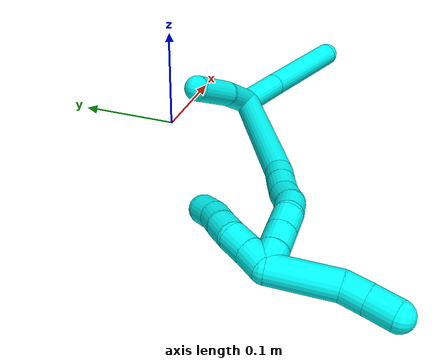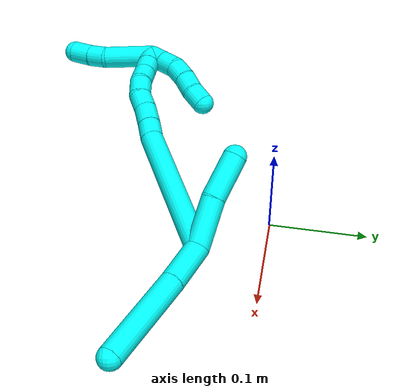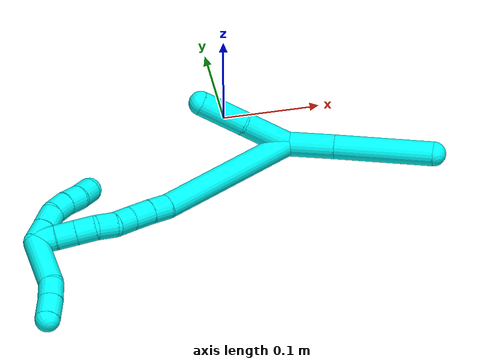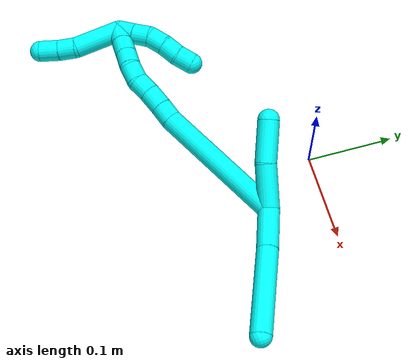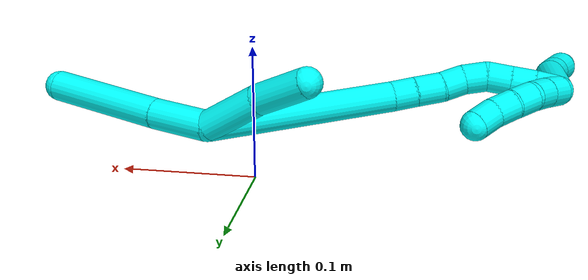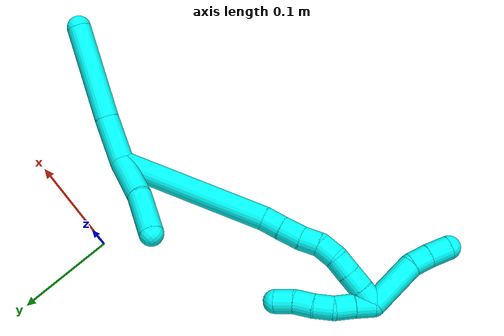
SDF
<sdf version="1.7">
 <world name="default">
  <model name="3">
   <static>0</static>
   <link name="3">
    <collision name="collision-cylinder-e_1_2_8">
     <pose>0.019988 0.009242 0.011061 -0.696038 0.946016 -0.367135</pose>
     <geometry><cylinder><radius>0.0125</radius><length>0.049286</length></cylinder></geometry>
     <surface>
      <friction><ode><mu>1.16</mu><mu2>1.16</mu2><slip1>0</slip1><slip2>0</slip2></ode></friction>
      <contact><ode><kp>1e+06</kp><kd>1</kd><max_vel>0</max_vel><min_depth>0.001</min_depth></ode></contact>
     </surface>
    </collision>
    <visual name="visual-cylinder-e_1_2_8">
     <pose>0.019988 0.009242 0.011061 -0.696038 0.946016 -0.367135</pose>
     <geometry><cylinder><radius>0.0125</radius><length>0.049286</length></cylinder></geometry>
     <material><ambient>0.003922 1 0.996078 1</ambient></material>
    </visual>
    <collision name="collision-cylinder-e_2_8_6">
     <pose>0.079408 0.038254 0.046413 -0.683154 0.899581 -0.339967</pose>
     <geometry><cylinder><radius>0.0125</radius><length>0.100714</length></cylinder></geometry>
     <surface>
      <friction><ode><mu>1.16</mu><mu2>1.16</mu2><slip1>0</slip1><slip2>0</slip2></ode></friction>
      <contact><ode><kp>1e+06</kp><kd>1</kd><max_vel>0</max_vel><min_depth>0.001</min_depth></ode></contact>
     </surface>
    </collision>
    <visual name="visual-cylinder-e_2_8_6">
     <pose>0.079408 0.038254 0.046413 -0.683154 0.899581 -0.339967</pose>
     <geometry><cylinder><radius>0.0125</radius><length>0.100714</length></cylinder></geometry>
     <material><ambient>0.003922 1 0.996078 1</ambient></material>
    </visual>
    <collision name="collision-cylinder-e_1_2_9">
     <pose>-0.023924 0.005223 -0.008307 -2.58034 -1.18156 2.32981</pose>
     <geometry><cylinder><radius>0.0125</radius><length>0.051716</length></cylinder></geometry>
     <surface>
      <friction><ode><mu>1.16</mu><mu2>1.16</mu2><slip1>0</slip1><slip2>0</slip2></ode></friction>
      <contact><ode><kp>1e+06</kp><kd>1</kd><max_vel>0</max_vel><min_depth>0.001</min_depth></ode></contact>
     </surface>
    </collision>
    <visual name="visual-cylinder-e_1_2_9">
     <pose>-0.023924 0.005223 -0.008307 -2.58034 -1.18156 2.32981</pose>
     <geometry><cylinder><radius>0.0125</radius><length>0.051716</length></cylinder></geometry>
     <material><ambient>0.003922 1 0.996078 1</ambient></material>
    </visual>
    <collision name="collision-cylinder-e_2_9_5">
     <pose>-0.069159 0.012924 -0.027684 -2.92128 -1.08167 2.77734</pose>
     <geometry><cylinder><radius>0.0125</radius><length>0.048284</length></cylinder></geometry>
     <surface>
      <friction><ode><mu>1.16</mu><mu2>1.16</mu2><slip1>0</slip1><slip2>0</slip2></ode></friction>
      <contact><ode><kp>1e+06</kp><kd>1</kd><max_vel>0</max_vel><min_depth>0.001</min_depth></ode></contact>
     </surface>
    </collision>
    <visual name="visual-cylinder-e_2_9_5">
     <pose>-0.069159 0.012924 -0.027684 -2.92128 -1.08167 2.77734</pose>
     <geometry><cylinder><radius>0.0125</radius><length>0.048284</length></cylinder></geometry>
     <material><ambient>0.003922 1 0.996078 1</ambient></material>
    </visual>
    <collision name="collision-cylinder-e_1_2_10">
     <pose>-0.070498 -0.01993 0.027694 0.623794 -1.12004 -0.398924</pose>
     <geometry><cylinder><radius>0.0125</radius><length>0.156641</length></cylinder></geometry>
     <surface>
      <friction><ode><mu>1.16</mu><mu2>1.16</mu2><slip1>0</slip1><slip2>0</slip2></ode></friction>
      <contact><ode><kp>1e+06</kp><kd>1</kd><max_vel>0</max_vel><min_depth>0.001</min_depth></ode></contact>
     </surface>
    </collision>
    <visual name="visual-cylinder-e_1_2_10">
     <pose>-0.070498 -0.01993 0.027694 0.623794 -1.12004 -0.398924</pose>
     <geometry><cylinder><radius>0.0125</radius><length>0.156641</length></cylinder></geometry>
     <material><ambient>0.003922 1 0.996078 1</ambient></material>
    </visual>
    <collision name="collision-cylinder-e_2_10_11">
     <pose>-0.150663 -0.041771 0.057512 0.732417 -1.28351 -0.558213</pose>
     <geometry><cylinder><radius>0.0125</radius><length>0.020162</length></cylinder></geometry>
     <surface>
      <friction><ode><mu>1.16</mu><mu2>1.16</mu2><slip1>0</slip1><slip2>0</slip2></ode></friction>
      <contact><ode><kp>1e+06</kp><kd>1</kd><max_vel>0</max_vel><min_depth>0.001</min_depth></ode></contact>
     </surface>
    </collision>
    <visual name="visual-cylinder-e_2_10_11">
     <pose>-0.150663 -0.041771 0.057512 0.732417 -1.28351 -0.558213</pose>
     <geometry><cylinder><radius>0.0125</radius><length>0.020162</length></cylinder></geometry>
     <material><ambient>0.003922 1 0.996078 1</ambient></material>
    </visual>
    <collision name="collision-cylinder-e_3_11_12">
     <pose>-0.17122 -0.046128 0.062467 0.712937 -1.23983 -0.519575</pose>
     <geometry><cylinder><radius>0.0125</radius><length>0.023027</length></cylinder></geometry>
     <surface>
      <friction><ode><mu>1.16</mu><mu2>1.16</mu2><slip1>0</slip1><slip2>0</slip2></ode></friction>
      <contact><ode><kp>1e+06</kp><kd>1</kd><max_vel>0</max_vel><min_depth>0.001</min_depth></ode></contact>
     </surface>
    </collision>
    <visual name="visual-cylinder-e_3_11_12">
     <pose>-0.17122 -0.046128 0.062467 0.712937 -1.23983 -0.519575</pose>
     <geometry><cylinder><radius>0.0125</radius><length>0.023027</length></cylinder></geometry>
     <material><ambient>0.003922 1 0.996078 1</ambient></material>
    </visual>
    <collision name="collision-cylinder-e_4_12_13">
     <pose>-0.191462 -0.049445 0.068811 0.242674 -1.20152 -0.166727</pose>
     <geometry><cylinder><radius>0.0125</radius><length>0.020059</length></cylinder></geometry>
     <surface>
      <friction><ode><mu>1.16</mu><mu2>1.16</mu2><slip1>0</slip1><slip2>0</slip2></ode></friction>
      <contact><ode><kp>1e+06</kp><kd>1</kd><max_vel>0</max_vel><min_depth>0.001</min_depth></ode></contact>
     </surface>
    </collision>
    <visual name="visual-cylinder-e_4_12_13">
     <pose>-0.191462 -0.049445 0.068811 0.242674 -1.20152 -0.166727</pose>
     <geometry><cylinder><radius>0.0125</radius><length>0.020059</length></cylinder></geometry>
     <material><ambient>0.003922 1 0.996078 1</ambient></material>
    </visual>
    <collision name="collision-cylinder-e_5_13_14">
     <pose>-0.210634 -0.052362 0.072595 1.43949 -1.36346 -1.23667</pose>
     <geometry><cylinder><radius>0.0125</radius><length>0.020067</length></cylinder></geometry>
     <surface>
      <friction><ode><mu>1.16</mu><mu2>1.16</mu2><slip1>0</slip1><slip2>0</slip2></ode></friction>
      <contact><ode><kp>1e+06</kp><kd>1</kd><max_vel>0</max_vel><min_depth>0.001</min_depth></ode></contact>
     </surface>
    </collision>
    <visual name="visual-cylinder-e_5_13_14">
     <pose>-0.210634 -0.052362 0.072595 1.43949 -1.36346 -1.23667</pose>
     <geometry><cylinder><radius>0.0125</radius><length>0.020067</length></cylinder></geometry>
     <material><ambient>0.003922 1 0.996078 1</ambient></material>
    </visual>
    <collision name="collision-cylinder-e_6_14_15">
     <pose>-0.22915 -0.059228 0.071703 1.80755 -1.05276 -1.27147</pose>
     <geometry><cylinder><radius>0.0125</radius><length>0.02002</length></cylinder></geometry>
     <surface>
      <friction><ode><mu>1.16</mu><mu2>1.16</mu2><slip1>0</slip1><slip2>0</slip2></ode></friction>
      <contact><ode><kp>1e+06</kp><kd>1</kd><max_vel>0</max_vel><min_depth>0.001</min_depth></ode></contact>
     </surface>
    </collision>
    <visual name="visual-cylinder-e_6_14_15">
     <pose>-0.22915 -0.059228 0.071703 1.80755 -1.05276 -1.27147</pose>
     <geometry><cylinder><radius>0.0125</radius><length>0.02002</length></cylinder></geometry>
     <material><ambient>0.003922 1 0.996078 1</ambient></material>
    </visual>
    <collision name="collision-cylinder-e_7_15_16">
     <pose>-0.246588 -0.068805 0.069467 1.79262 -1.06185 -1.2668</pose>
     <geometry><cylinder><radius>0.0125</radius><length>0.020022</length></cylinder></geometry>
     <surface>
      <friction><ode><mu>1.16</mu><mu2>1.16</mu2><slip1>0</slip1><slip2>0</slip2></ode></friction>
      <contact><ode><kp>1e+06</kp><kd>1</kd><max_vel>0</max_vel><min_depth>0.001</min_depth></ode></contact>
     </surface>
    </collision>
    <visual name="visual-cylinder-e_7_15_16">
     <pose>-0.246588 -0.068805 0.069467 1.79262 -1.06185 -1.2668</pose>
     <geometry><cylinder><radius>0.0125</radius><length>0.020022</length></cylinder></geometry>
     <material><ambient>0.003922 1 0.996078 1</ambient></material>
    </visual>
    <collision name="collision-cylinder-e_8_16_1">
     <pose>-0.263822 -0.078615 0.066847 1.86789 -1.01419 -1.2884</pose>
     <geometry><cylinder><radius>0.0125</radius><length>0.020002</length></cylinder></geometry>
     <surface>
      <friction><ode><mu>1.16</mu><mu2>1.16</mu2><slip1>0</slip1><slip2>0</slip2></ode></friction>
      <contact><ode><kp>1e+06</kp><kd>1</kd><max_vel>0</max_vel><min_depth>0.001</min_depth></ode></contact>
     </surface>
    </collision>
    <visual name="visual-cylinder-e_8_16_1">
     <pose>-0.263822 -0.078615 0.066847 1.86789 -1.01419 -1.2884</pose>
     <geometry><cylinder><radius>0.0125</radius><length>0.020002</length></cylinder></geometry>
     <material><ambient>0.003922 1 0.996078 1</ambient></material>
    </visual>
    <collision name="collision-cylinder-e_1_1_17">
     <pose>-0.272994 -0.083891 0.093412 0.007936 -0.024245 -9.6e-05</pose>
     <geometry><cylinder><radius>0.0125</radius><length>0.056241</length></cylinder></geometry>
     <surface>
      <friction><ode><mu>1.16</mu><mu2>1.16</mu2><slip1>0</slip1><slip2>0</slip2></ode></friction>
      <contact><ode><kp>1e+06</kp><kd>1</kd><max_vel>0</max_vel><min_depth>0.001</min_depth></ode></contact>
     </surface>
    </collision>
    <visual name="visual-cylinder-e_1_1_17">
     <pose>-0.272994 -0.083891 0.093412 0.007936 -0.024245 -9.6e-05</pose>
     <geometry><cylinder><radius>0.0125</radius><length>0.056241</length></cylinder></geometry>
     <material><ambient>0.003922 1 0.996078 1</ambient></material>
    </visual>
    <collision name="collision-cylinder-e_2_17_18">
     <pose>-0.276544 -0.085996 0.131146 0.193171 -0.284533 -0.027753</pose>
     <geometry><cylinder><radius>0.0125</radius><length>0.020432</length></cylinder></geometry>
     <surface>
      <friction><ode><mu>1.16</mu><mu2>1.16</mu2><slip1>0</slip1><slip2>0</slip2></ode></friction>
      <contact><ode><kp>1e+06</kp><kd>1</kd><max_vel>0</max_vel><min_depth>0.001</min_depth></ode></contact>
     </surface>
    </collision>
    <visual name="visual-cylinder-e_2_17_18">
     <pose>-0.276544 -0.085996 0.131146 0.193171 -0.284533 -0.027753</pose>
     <geometry><cylinder><radius>0.0125</radius><length>0.020432</length></cylinder></geometry>
     <material><ambient>0.003922 1 0.996078 1</ambient></material>
    </visual>
    <collision name="collision-cylinder-e_3_18_4">
     <pose>-0.283774 -0.089774 0.151419 0.176145 -0.383322 -0.034265</pose>
     <geometry><cylinder><radius>0.0125</radius><length>0.023327</length></cylinder></geometry>
     <surface>
      <friction><ode><mu>1.16</mu><mu2>1.16</mu2><slip1>0</slip1><slip2>0</slip2></ode></friction>
      <contact><ode><kp>1e+06</kp><kd>1</kd><max_vel>0</max_vel><min_depth>0.001</min_depth></ode></contact>
     </surface>
    </collision>
    <visual name="visual-cylinder-e_3_18_4">
     <pose>-0.283774 -0.089774 0.151419 0.176145 -0.383322 -0.034265</pose>
     <geometry><cylinder><radius>0.0125</radius><length>0.023327</length></cylinder></geometry>
     <material><ambient>0.003922 1 0.996078 1</ambient></material>
    </visual>
    <collision name="collision-cylinder-e_1_1_19">
     <pose>-0.266277 -0.080614 0.057935 -2.74858 0.647951 -2.07133</pose>
     <geometry><cylinder><radius>0.0125</radius><length>0.02</length></cylinder></geometry>
     <surface>
      <friction><ode><mu>1.16</mu><mu2>1.16</mu2><slip1>0</slip1><slip2>0</slip2></ode></friction>
      <contact><ode><kp>1e+06</kp><kd>1</kd><max_vel>0</max_vel><min_depth>0.001</min_depth></ode></contact>
     </surface>
    </collision>
    <visual name="visual-cylinder-e_1_1_19">
     <pose>-0.266277 -0.080614 0.057935 -2.74858 0.647951 -2.07133</pose>
     <geometry><cylinder><radius>0.0125</radius><length>0.02</length></cylinder></geometry>
     <material><ambient>0.003922 1 0.996078 1</ambient></material>
    </visual>
    <collision name="collision-cylinder-e_2_19_20">
     <pose>-0.254362 -0.074961 0.042911 -2.81437 0.628576 -2.20175</pose>
     <geometry><cylinder><radius>0.0125</radius><length>0.02</length></cylinder></geometry>
     <surface>
      <friction><ode><mu>1.16</mu><mu2>1.16</mu2><slip1>0</slip1><slip2>0</slip2></ode></friction>
      <contact><ode><kp>1e+06</kp><kd>1</kd><max_vel>0</max_vel><min_depth>0.001</min_depth></ode></contact>
     </surface>
    </collision>
    <visual name="visual-cylinder-e_2_19_20">
     <pose>-0.254362 -0.074961 0.042911 -2.81437 0.628576 -2.20175</pose>
     <geometry><cylinder><radius>0.0125</radius><length>0.02</length></cylinder></geometry>
     <material><ambient>0.003922 1 0.996078 1</ambient></material>
    </visual>
    <collision name="collision-cylinder-e_3_20_21">
     <pose>-0.240343 -0.071249 0.029547 -2.9491 0.950729 -2.77077</pose>
     <geometry><cylinder><radius>0.0125</radius><length>0.02</length></cylinder></geometry>
     <surface>
      <friction><ode><mu>1.16</mu><mu2>1.16</mu2><slip1>0</slip1><slip2>0</slip2></ode></friction>
      <contact><ode><kp>1e+06</kp><kd>1</kd><max_vel>0</max_vel><min_depth>0.001</min_depth></ode></contact>
     </surface>
    </collision>
    <visual name="visual-cylinder-e_3_20_21">
     <pose>-0.240343 -0.071249 0.029547 -2.9491 0.950729 -2.77077</pose>
     <geometry><cylinder><radius>0.0125</radius><length>0.02</length></cylinder></geometry>
     <material><ambient>0.003922 1 0.996078 1</ambient></material>
    </visual>
    <collision name="collision-cylinder-e_4_21_22">
     <pose>-0.223322 -0.069718 0.01927 -3.05018 1.09358 -2.99159</pose>
     <geometry><cylinder><radius>0.0125</radius><length>0.02</length></cylinder></geometry>
     <surface>
      <friction><ode><mu>1.16</mu><mu2>1.16</mu2><slip1>0</slip1><slip2>0</slip2></ode></friction>
      <contact><ode><kp>1e+06</kp><kd>1</kd><max_vel>0</max_vel><min_depth>0.001</min_depth></ode></contact>
     </surface>
    </collision>
    <visual name="visual-cylinder-e_4_21_22">
     <pose>-0.223322 -0.069718 0.01927 -3.05018 1.09358 -2.99159</pose>
     <geometry><cylinder><radius>0.0125</radius><length>0.02</length></cylinder></geometry>
     <material><ambient>0.003922 1 0.996078 1</ambient></material>
    </visual>
    <collision name="collision-cylinder-e_5_22_3">
     <pose>-0.206499 -0.069804 0.008639 3.05833 0.91751 2.97332</pose>
     <geometry><cylinder><radius>0.0125</radius><length>0.02</length></cylinder></geometry>
     <surface>
      <friction><ode><mu>1.16</mu><mu2>1.16</mu2><slip1>0</slip1><slip2>0</slip2></ode></friction>
      <contact><ode><kp>1e+06</kp><kd>1</kd><max_vel>0</max_vel><min_depth>0.001</min_depth></ode></contact>
     </surface>
    </collision>
    <visual name="visual-cylinder-e_5_22_3">
     <pose>-0.206499 -0.069804 0.008639 3.05833 0.91751 2.97332</pose>
     <geometry><cylinder><radius>0.0125</radius><length>0.02</length></cylinder></geometry>
     <material><ambient>0.003922 1 0.996078 1</ambient></material>
    </visual>
    <collision name="collision-sphere-3">
     <pose>-0.198558 -0.07031 0.002582 0 -0 0</pose>
     <geometry><sphere><radius>0.0125</radius></sphere></geometry>
     <surface>
      <friction><ode><mu>1.16</mu><mu2>1.16</mu2><slip1>0</slip1><slip2>0</slip2></ode></friction>
      <contact><ode><kp>1e+06</kp><kd>1</kd><max_vel>0</max_vel><min_depth>0.001</min_depth></ode></contact>
     </surface>
    </collision>
    <visual name="visual-sphere-3">
     <pose>-0.198558 -0.07031 0.002582 0 -0 0</pose>
     <geometry><sphere><radius>0.0125</radius></sphere></geometry>
     <material><ambient>0.003922 1 0.996078 1</ambient></material>
    </visual>
    <collision name="collision-sphere-22">
     <pose>-0.214439 -0.069299 0.014696 0 -0 0</pose>
     <geometry><sphere><radius>0.0125</radius></sphere></geometry>
     <surface>
      <friction><ode><mu>1.16</mu><mu2>1.16</mu2><slip1>0</slip1><slip2>0</slip2></ode></friction>
      <contact><ode><kp>1e+06</kp><kd>1</kd><max_vel>0</max_vel><min_depth>0.001</min_depth></ode></contact>
     </surface>
    </collision>
    <visual name="visual-sphere-22">
     <pose>-0.214439 -0.069299 0.014696 0 -0 0</pose>
     <geometry><sphere><radius>0.0125</radius></sphere></geometry>
     <material><ambient>0.003922 1 0.996078 1</ambient></material>
    </visual>
    <collision name="collision-sphere-21">
     <pose>-0.232205 -0.070137 0.023844 0 -0 0</pose>
     <geometry><sphere><radius>0.0125</radius></sphere></geometry>
     <surface>
      <friction><ode><mu>1.16</mu><mu2>1.16</mu2><slip1>0</slip1><slip2>0</slip2></ode></friction>
      <contact><ode><kp>1e+06</kp><kd>1</kd><max_vel>0</max_vel><min_depth>0.001</min_depth></ode></contact>
     </surface>
    </collision>
    <visual name="visual-sphere-21">
     <pose>-0.232205 -0.070137 0.023844 0 -0 0</pose>
     <geometry><sphere><radius>0.0125</radius></sphere></geometry>
     <material><ambient>0.003922 1 0.996078 1</ambient></material>
    </visual>
    <collision name="collision-sphere-20">
     <pose>-0.248482 -0.072361 0.035251 0 -0 0</pose>
     <geometry><sphere><radius>0.0125</radius></sphere></geometry>
     <surface>
      <friction><ode><mu>1.16</mu><mu2>1.16</mu2><slip1>0</slip1><slip2>0</slip2></ode></friction>
      <contact><ode><kp>1e+06</kp><kd>1</kd><max_vel>0</max_vel><min_depth>0.001</min_depth></ode></contact>
     </surface>
    </collision>
    <visual name="visual-sphere-20">
     <pose>-0.248482 -0.072361 0.035251 0 -0 0</pose>
     <geometry><sphere><radius>0.0125</radius></sphere></geometry>
     <material><ambient>0.003922 1 0.996078 1</ambient></material>
    </visual>
    <collision name="collision-sphere-19">
     <pose>-0.260242 -0.07756 0.05057 0 -0 0</pose>
     <geometry><sphere><radius>0.0125</radius></sphere></geometry>
     <surface>
      <friction><ode><mu>1.16</mu><mu2>1.16</mu2><slip1>0</slip1><slip2>0</slip2></ode></friction>
      <contact><ode><kp>1e+06</kp><kd>1</kd><max_vel>0</max_vel><min_depth>0.001</min_depth></ode></contact>
     </surface>
    </collision>
    <visual name="visual-sphere-19">
     <pose>-0.260242 -0.07756 0.05057 0 -0 0</pose>
     <geometry><sphere><radius>0.0125</radius></sphere></geometry>
     <material><ambient>0.003922 1 0.996078 1</ambient></material>
    </visual>
    <collision name="collision-sphere-10">
     <pose>-0.140996 -0.039861 0.055389 0 -0 0</pose>
     <geometry><sphere><radius>0.0125</radius></sphere></geometry>
     <surface>
      <friction><ode><mu>1.16</mu><mu2>1.16</mu2><slip1>0</slip1><slip2>0</slip2></ode></friction>
      <contact><ode><kp>1e+06</kp><kd>1</kd><max_vel>0</max_vel><min_depth>0.001</min_depth></ode></contact>
     </surface>
    </collision>
    <visual name="visual-sphere-10">
     <pose>-0.140996 -0.039861 0.055389 0 -0 0</pose>
     <geometry><sphere><radius>0.0125</radius></sphere></geometry>
     <material><ambient>0.003922 1 0.996078 1</ambient></material>
    </visual>
    <collision name="collision-sphere-5">
     <pose>-0.09047 0.015403 -0.038753 0 -0 0</pose>
     <geometry><sphere><radius>0.0125</radius></sphere></geometry>
     <surface>
      <friction><ode><mu>1.16</mu><mu2>1.16</mu2><slip1>0</slip1><slip2>0</slip2></ode></friction>
      <contact><ode><kp>1e+06</kp><kd>1</kd><max_vel>0</max_vel><min_depth>0.001</min_depth></ode></contact>
     </surface>
    </collision>
    <visual name="visual-sphere-5">
     <pose>-0.09047 0.015403 -0.038753 0 -0 0</pose>
     <geometry><sphere><radius>0.0125</radius></sphere></geometry>
     <material><ambient>0.003922 1 0.996078 1</ambient></material>
    </visual>
    <collision name="collision-sphere-6">
     <pose>0.118841 0.058024 0.070704 0 -0 0</pose>
     <geometry><sphere><radius>0.0125</radius></sphere></geometry>
     <surface>
      <friction><ode><mu>1.16</mu><mu2>1.16</mu2><slip1>0</slip1><slip2>0</slip2></ode></friction>
      <contact><ode><kp>1e+06</kp><kd>1</kd><max_vel>0</max_vel><min_depth>0.001</min_depth></ode></contact>
     </surface>
    </collision>
    <visual name="visual-sphere-6">
     <pose>0.118841 0.058024 0.070704 0 -0 0</pose>
     <geometry><sphere><radius>0.0125</radius></sphere></geometry>
     <material><ambient>0.003922 1 0.996078 1</ambient></material>
    </visual>
    <collision name="collision-sphere-9">
     <pose>-0.047847 0.010445 -0.016615 0 -0 0</pose>
     <geometry><sphere><radius>0.0125</radius></sphere></geometry>
     <surface>
      <friction><ode><mu>1.16</mu><mu2>1.16</mu2><slip1>0</slip1><slip2>0</slip2></ode></friction>
      <contact><ode><kp>1e+06</kp><kd>1</kd><max_vel>0</max_vel><min_depth>0.001</min_depth></ode></contact>
     </surface>
    </collision>
    <visual name="visual-sphere-9">
     <pose>-0.047847 0.010445 -0.016615 0 -0 0</pose>
     <geometry><sphere><radius>0.0125</radius></sphere></geometry>
     <material><ambient>0.003922 1 0.996078 1</ambient></material>
    </visual>
    <collision name="collision-sphere-2">
     <geometry><sphere><radius>0.0125</radius></sphere></geometry>
     <surface>
      <friction><ode><mu>1.16</mu><mu2>1.16</mu2><slip1>0</slip1><slip2>0</slip2></ode></friction>
      <contact><ode><kp>1e+06</kp><kd>1</kd><max_vel>0</max_vel><min_depth>0.001</min_depth></ode></contact>
     </surface>
    </collision>
    <visual name="visual-sphere-2">
     <geometry><sphere><radius>0.0125</radius></sphere></geometry>
     <material><ambient>0.003922 1 0.996078 1</ambient></material>
    </visual>
    <collision name="collision-sphere-8">
     <pose>0.039975 0.018484 0.022122 0 -0 0</pose>
     <geometry><sphere><radius>0.0125</radius></sphere></geometry>
     <surface>
      <friction><ode><mu>1.16</mu><mu2>1.16</mu2><slip1>0</slip1><slip2>0</slip2></ode></friction>
      <contact><ode><kp>1e+06</kp><kd>1</kd><max_vel>0</max_vel><min_depth>0.001</min_depth></ode></contact>
     </surface>
    </collision>
    <visual name="visual-sphere-8">
     <pose>0.039975 0.018484 0.022122 0 -0 0</pose>
     <geometry><sphere><radius>0.0125</radius></sphere></geometry>
     <material><ambient>0.003922 1 0.996078 1</ambient></material>
    </visual>
    <collision name="collision-sphere-11">
     <pose>-0.160331 -0.04368 0.059636 0 -0 0</pose>
     <geometry><sphere><radius>0.0125</radius></sphere></geometry>
     <surface>
      <friction><ode><mu>1.16</mu><mu2>1.16</mu2><slip1>0</slip1><slip2>0</slip2></ode></friction>
      <contact><ode><kp>1e+06</kp><kd>1</kd><max_vel>0</max_vel><min_depth>0.001</min_depth></ode></contact>
     </surface>
    </collision>
    <visual name="visual-sphere-11">
     <pose>-0.160331 -0.04368 0.059636 0 -0 0</pose>
     <geometry><sphere><radius>0.0125</radius></sphere></geometry>
     <material><ambient>0.003922 1 0.996078 1</ambient></material>
    </visual>
    <collision name="collision-sphere-12">
     <pose>-0.182109 -0.048575 0.065297 0 -0 0</pose>
     <geometry><sphere><radius>0.0125</radius></sphere></geometry>
     <surface>
      <friction><ode><mu>1.16</mu><mu2>1.16</mu2><slip1>0</slip1><slip2>0</slip2></ode></friction>
      <contact><ode><kp>1e+06</kp><kd>1</kd><max_vel>0</max_vel><min_depth>0.001</min_depth></ode></contact>
     </surface>
    </collision>
    <visual name="visual-sphere-12">
     <pose>-0.182109 -0.048575 0.065297 0 -0 0</pose>
     <geometry><sphere><radius>0.0125</radius></sphere></geometry>
     <material><ambient>0.003922 1 0.996078 1</ambient></material>
    </visual>
    <collision name="collision-sphere-13">
     <pose>-0.200816 -0.050315 0.072325 0 -0 0</pose>
     <geometry><sphere><radius>0.0125</radius></sphere></geometry>
     <surface>
      <friction><ode><mu>1.16</mu><mu2>1.16</mu2><slip1>0</slip1><slip2>0</slip2></ode></friction>
      <contact><ode><kp>1e+06</kp><kd>1</kd><max_vel>0</max_vel><min_depth>0.001</min_depth></ode></contact>
     </surface>
    </collision>
    <visual name="visual-sphere-13">
     <pose>-0.200816 -0.050315 0.072325 0 -0 0</pose>
     <geometry><sphere><radius>0.0125</radius></sphere></geometry>
     <material><ambient>0.003922 1 0.996078 1</ambient></material>
    </visual>
    <collision name="collision-sphere-14">
     <pose>-0.220453 -0.05441 0.072866 0 -0 0</pose>
     <geometry><sphere><radius>0.0125</radius></sphere></geometry>
     <surface>
      <friction><ode><mu>1.16</mu><mu2>1.16</mu2><slip1>0</slip1><slip2>0</slip2></ode></friction>
      <contact><ode><kp>1e+06</kp><kd>1</kd><max_vel>0</max_vel><min_depth>0.001</min_depth></ode></contact>
     </surface>
    </collision>
    <visual name="visual-sphere-14">
     <pose>-0.220453 -0.05441 0.072866 0 -0 0</pose>
     <geometry><sphere><radius>0.0125</radius></sphere></geometry>
     <material><ambient>0.003922 1 0.996078 1</ambient></material>
    </visual>
    <collision name="collision-sphere-15">
     <pose>-0.237846 -0.064047 0.07054 0 -0 0</pose>
     <geometry><sphere><radius>0.0125</radius></sphere></geometry>
     <surface>
      <friction><ode><mu>1.16</mu><mu2>1.16</mu2><slip1>0</slip1><slip2>0</slip2></ode></friction>
      <contact><ode><kp>1e+06</kp><kd>1</kd><max_vel>0</max_vel><min_depth>0.001</min_depth></ode></contact>
     </surface>
    </collision>
    <visual name="visual-sphere-15">
     <pose>-0.237846 -0.064047 0.07054 0 -0 0</pose>
     <geometry><sphere><radius>0.0125</radius></sphere></geometry>
     <material><ambient>0.003922 1 0.996078 1</ambient></material>
    </visual>
    <collision name="collision-sphere-16">
     <pose>-0.25533 -0.073563 0.068394 0 -0 0</pose>
     <geometry><sphere><radius>0.0125</radius></sphere></geometry>
     <surface>
      <friction><ode><mu>1.16</mu><mu2>1.16</mu2><slip1>0</slip1><slip2>0</slip2></ode></friction>
      <contact><ode><kp>1e+06</kp><kd>1</kd><max_vel>0</max_vel><min_depth>0.001</min_depth></ode></contact>
     </surface>
    </collision>
    <visual name="visual-sphere-16">
     <pose>-0.25533 -0.073563 0.068394 0 -0 0</pose>
     <geometry><sphere><radius>0.0125</radius></sphere></geometry>
     <material><ambient>0.003922 1 0.996078 1</ambient></material>
    </visual>
    <collision name="collision-sphere-1">
     <pose>-0.272313 -0.083668 0.065301 0 -0 0</pose>
     <geometry><sphere><radius>0.0125</radius></sphere></geometry>
     <surface>
      <friction><ode><mu>1.16</mu><mu2>1.16</mu2><slip1>0</slip1><slip2>0</slip2></ode></friction>
      <contact><ode><kp>1e+06</kp><kd>1</kd><max_vel>0</max_vel><min_depth>0.001</min_depth></ode></contact>
     </surface>
    </collision>
    <visual name="visual-sphere-1">
     <pose>-0.272313 -0.083668 0.065301 0 -0 0</pose>
     <geometry><sphere><radius>0.0125</radius></sphere></geometry>
     <material><ambient>0.003922 1 0.996078 1</ambient></material>
    </visual>
    <collision name="collision-sphere-18">
     <pose>-0.279412 -0.087878 0.140769 0 -0 0</pose>
     <geometry><sphere><radius>0.0125</radius></sphere></geometry>
     <surface>
      <friction><ode><mu>1.16</mu><mu2>1.16</mu2><slip1>0</slip1><slip2>0</slip2></ode></friction>
      <contact><ode><kp>1e+06</kp><kd>1</kd><max_vel>0</max_vel><min_depth>0.001</min_depth></ode></contact>
     </surface>
    </collision>
    <visual name="visual-sphere-18">
     <pose>-0.279412 -0.087878 0.140769 0 -0 0</pose>
     <geometry><sphere><radius>0.0125</radius></sphere></geometry>
     <material><ambient>0.003922 1 0.996078 1</ambient></material>
    </visual>
    <collision name="collision-sphere-17">
     <pose>-0.273676 -0.084114 0.121523 0 -0 0</pose>
     <geometry><sphere><radius>0.0125</radius></sphere></geometry>
     <surface>
      <friction><ode><mu>1.16</mu><mu2>1.16</mu2><slip1>0</slip1><slip2>0</slip2></ode></friction>
      <contact><ode><kp>1e+06</kp><kd>1</kd><max_vel>0</max_vel><min_depth>0.001</min_depth></ode></contact>
     </surface>
    </collision>
    <visual name="visual-sphere-17">
     <pose>-0.273676 -0.084114 0.121523 0 -0 0</pose>
     <geometry><sphere><radius>0.0125</radius></sphere></geometry>
     <material><ambient>0.003922 1 0.996078 1</ambient></material>
    </visual>
    <collision name="collision-sphere-4">
     <pose>-0.288136 -0.091669 0.162068 0 -0 0</pose>
     <geometry><sphere><radius>0.0125</radius></sphere></geometry>
     <surface>
      <friction><ode><mu>1.16</mu><mu2>1.16</mu2><slip1>0</slip1><slip2>0</slip2></ode></friction>
      <contact><ode><kp>1e+06</kp><kd>1</kd><max_vel>0</max_vel><min_depth>0.001</min_depth></ode></contact>
     </surface>
    </collision>
    <visual name="visual-sphere-4">
     <pose>-0.288136 -0.091669 0.162068 0 -0 0</pose>
     <geometry><sphere><radius>0.0125</radius></sphere></geometry>
     <material><ambient>0.003922 1 0.996078 1</ambient></material>
    </visual>
    <inertial>
     <pose>-0.117234 -0.029198 0.042695 0 -0 0</pose>
     <mass>0.75</mass>
     <inertia>
      <ixx>0.00011</ixx>
      <ixy>0</ixy>
      <ixz>0</ixz>
      <iyy>0.000385</iyy>
      <iyz>0</iyz>
      <izz>0.000296</izz>
     </inertia>
    </inertial>
   </link>
   <pose>0.051994 -0.065846 0.012405 1.65894 0.348195 0.164194</pose>
  </model>
 </world>
</sdf>
